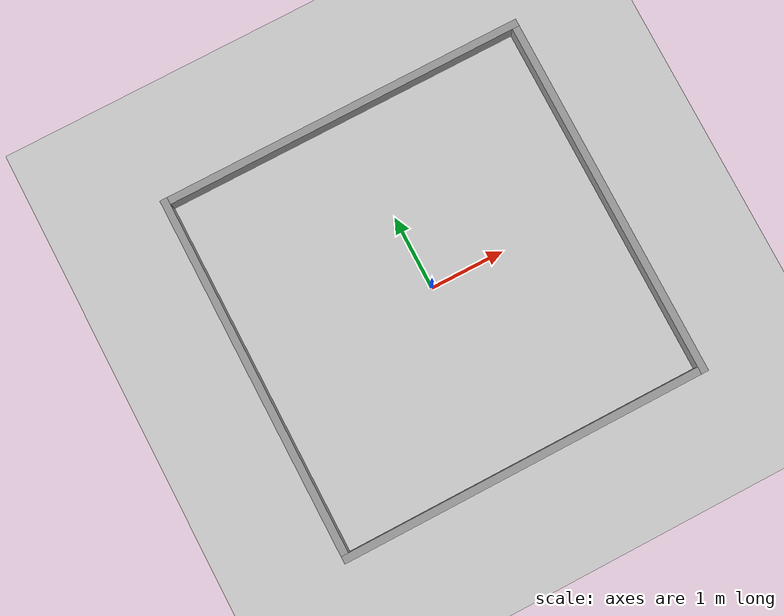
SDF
<?xml version="1.0"?>
<sdf version="1.6">
  <world name="default">

    <include>
      <uri>model://ground_plane</uri>
    </include>

    <include>
      <uri>model://sun</uri>
    </include>

    <scene>
      <shadows>false</shadows>
    </scene>

    <gui fullscreen='0'>
      <camera name='user_camera'>
        <pose frame=''>0.319654 -0.235002 9.29441 0 1.5138 0.009599</pose>
        <view_controller>orbit</view_controller>
        <projection_type>perspective</projection_type>
      </camera>
    </gui>

    <physics type="ode">
      <real_time_update_rate>1000.0</real_time_update_rate>
      <max_step_size>0.001</max_step_size>
      <real_time_factor>1</real_time_factor>
      <ode>
        <solver>
          <type>quick</type>
          <iters>150</iters>
          <precon_iters>0</precon_iters>
          <sor>1.400000</sor>
          <use_dynamic_moi_rescaling>1</use_dynamic_moi_rescaling>
        </solver>
        <constraints>
          <cfm>0.00001</cfm>
          <erp>0.2</erp>
          <contact_max_correcting_vel>2000.000000</contact_max_correcting_vel>
          <contact_surface_layer>0.01000</contact_surface_layer>
        </constraints>
      </ode>
    </physics>

    <include>
      <uri>model://arena_walls</uri>
    </include>

  </world>
</sdf>

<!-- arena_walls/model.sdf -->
<sdf version='1.6'>
  <model name='arena_walls'>
    <pose frame=''>0 0 0.15 0 0 0</pose>
    <link name='Right_Wall'>
      <collision name='Right_Wall_Collision'>
        <geometry>
          <box>
            <size>4.90 0.10 0.3</size>
          </box>
        </geometry>
        <pose frame=''>0 0 0 0 0 0</pose>
      </collision>
      <visual name='Right_Wall_Visual'>
        <pose frame=''>0 0 0 0 0 0</pose>
        <geometry>
          <box>
            <size>4.90 0.10 0.3</size>
          </box>
        </geometry>
        <material>
          <script>
            <uri>file://media/materials/scripts/gazebo.material</uri>
            <name>Gazebo/Grey</name>
          </script>
          <ambient>1 1 1 1</ambient>
        </material>
      </visual>
      <pose frame=''>0.05 2.45 0 0 0 0</pose>
    </link>
    <link name='Back_Wall'>
      <collision name='Back_Wall_Collision'>
        <geometry>
          <box>
            <size>4.90 0.10 0.3</size>
          </box>
        </geometry>
        <pose frame=''>0 0 0 0 0 0</pose>
      </collision>
      <visual name='Back_Wall_Visual'>
        <pose frame=''>0 0 0 0 0 0</pose>
        <geometry>
          <box>
            <size>4.90 0.10 0.3</size>
          </box>
        </geometry>
        <material>
          <script>
            <uri>file://media/materials/scripts/gazebo.material</uri>
            <name>Gazebo/Grey</name>
          </script>
          <ambient>1 1 1 1</ambient>
        </material>
      </visual>
      <pose frame=''>-2.45 0.05 0 0 0 1.5708</pose>
    </link>
    <link name='Left_Wall'>
      <collision name='Left_Wall_Collision'>
        <geometry>
          <box>
            <size>4.90 0.10 0.3</size>
          </box>
        </geometry>
        <pose frame=''>0 0 0 0 0 0</pose>
      </collision>
      <visual name='Left_Wall_Visual'>
        <pose frame=''>0 0 0 0 0 0</pose>
        <geometry>
          <box>
            <size>4.90 0.10 0.3</size>
          </box>
        </geometry>
        <material>
          <script>
            <uri>file://media/materials/scripts/gazebo.material</uri>
            <name>Gazebo/Grey</name>
          </script>
          <ambient>1 1 1 1</ambient>
        </material>
      </visual>
      <pose frame=''>-0.05 -2.45 0 0 0 0</pose>
    </link>
    <link name='Front_Wall'>
      <collision name='Front_Wall_Collision'>
        <geometry>
          <box>
            <size>4.90 0.10 0.3</size>
          </box>
        </geometry>
        <pose frame=''>0 0 0 0 0 0</pose>
      </collision>
      <visual name='Front_Wall_Visual'>
        <pose frame=''>0 0 0 0 0 0</pose>
        <geometry>
          <box>
            <size>4.90 0.10 0.3</size>
          </box>
        </geometry>
        <material>
          <script>
            <uri>file://media/materials/scripts/gazebo.material</uri>
            <name>Gazebo/Grey</name>
          </script>
          <ambient>1 1 1 1</ambient>
        </material>
      </visual>
      <pose frame=''>2.45 -0.05 0 0 0 1.5708</pose>
    </link>
    <static>1</static>
  </model>
</sdf>
